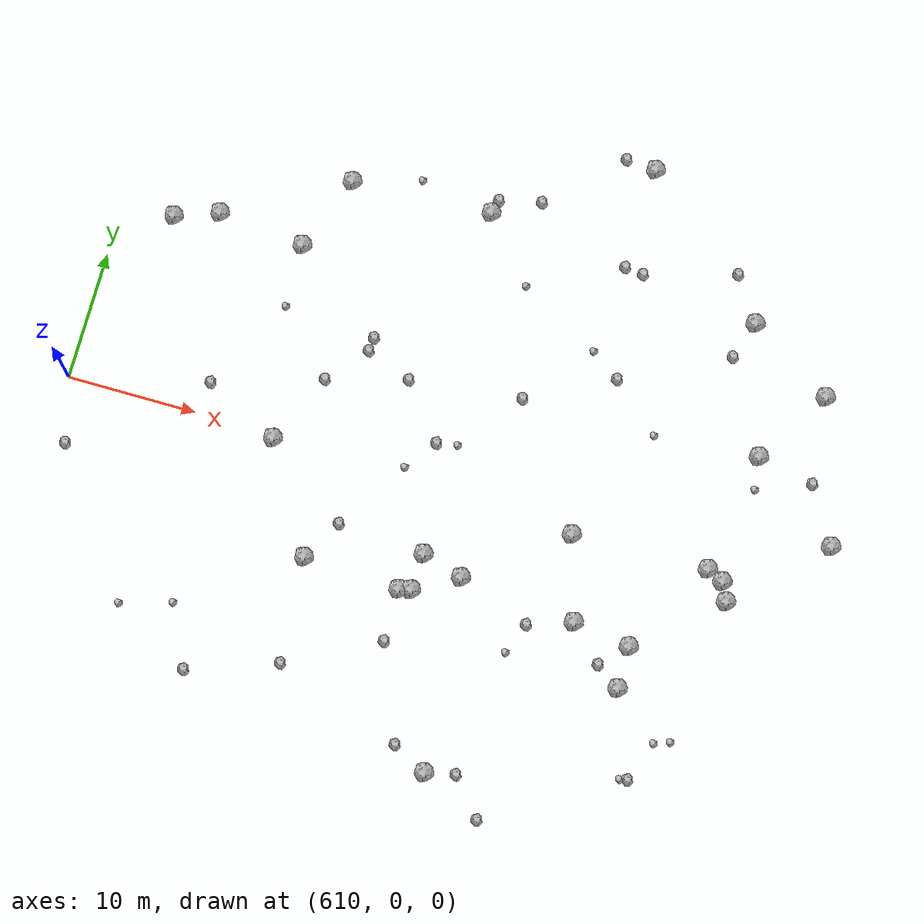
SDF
<sdf version="1.6">
 <world name="default">
  <include><uri>model://sun</uri></include>
  <model name="rock1_16_3">
   <include><uri>model://rock1</uri><pose>665.6225257198477 13.93714273295518 0.5 0 0 0</pose></include>
  </model>
  <model name="rock1_16_4">
   <include><uri>model://rock1</uri><pose>639.4457408850024 -8.692595622531517 0.5 0 0 0</pose></include>
  </model>
  <model name="rock1_16_5">
   <include><uri>model://rock1</uri><pose>668.8540989846516 2.9368927238578237 0.5 0 0 0</pose></include>
  </model>
  <model name="rock1_16_6">
   <include><uri>model://rock1</uri><pose>662.3416538029916 -3.219359252525507 0.5 0 0 0</pose></include>
  </model>
  <model name="rock1_16_7">
   <include><uri>model://rock1</uri><pose>644.1001378718471 -21.59436735857426 0.5 0 0 0</pose></include>
  </model>
  <model name="rock1_16_8">
   <include><uri>model://rock1</uri><pose>637.4254192402763 21.018926272716293 0.5 0 0 0</pose></include>
  </model>
  <model name="rock1_16_9">
   <include><uri>model://rock1</uri><pose>617.4220895436378 15.413954665630563 0.5 0 0 0</pose></include>
  </model>
  <model name="rock1_16_10">
   <include><uri>model://rock1</uri><pose>626.2604143957615 -0.3749311792992387 0.5 0 0 0</pose></include>
  </model>
  <model name="rock1_16_11">
   <include><uri>model://rock1</uri><pose>656.2314718525028 -11.689606638423594 0.5 0 0 0</pose></include>
  </model>
  <model name="rock1_16_12">
   <include><uri>model://rock1</uri><pose>661.9219345813685 8.120661465088887 0.5 0 0 0</pose></include>
  </model>
  <model name="rock1_16_13">
   <include><uri>model://rock1</uri><pose>614.1022810576691 14.24039832576431 0.5 0 0 0</pose></include>
  </model>
  <model name="rock1_16_14">
   <include><uri>model://rock1</uri><pose>631.0551963812377 -8.487451322778526 0.5 0 0 0</pose></include>
  </model>
  <model name="rock1_16_15">
   <include><uri>model://rock1</uri><pose>659.0713869691016 18.044614010965503 0.5 0 0 0</pose></include>
  </model>
  <model name="rock1_16_16">
   <include><uri>model://rock1</uri><pose>648.6599584556368 27.70835717753016 0.5 0 0 0</pose></include>
  </model>
  <model name="rock1_16_17">
   <include><uri>model://rock1</uri><pose>660.3993154470285 -1.2008359254691854 0.5 0 0 0</pose></include>
  </model>
  <model name="rock1_16_18">
   <include><uri>model://rock1</uri><pose>638.527197716588 -8.918286344459293 0.5 0 0 0</pose></include>
  </model>
  <model name="rock1_16_19">
   <include><uri>model://rock1</uri><pose>642.7794043646174 -6.7891646781425194 0.5 0 0 0</pose></include>
  </model>
  <model name="rock1_16_20">
   <include><uri>model://rock1</uri><pose>661.6867021456787 -1.8224562924109868 0.5 0 0 0</pose></include>
  </model>
  <model name="rock1_16_21">
   <include><uri>model://rock1</uri><pose>649.9096189660722 -1.4070959765963558 0.5 0 0 0</pose></include>
  </model>
  <model name="rock1_16_22">
   <include><uri>model://rock1</uri><pose>651.7918726586502 -7.776792826010613 0.5 0 0 0</pose></include>
  </model>
  <model name="rock1_16_23">
   <include><uri>model://rock1</uri><pose>624.1996205482674 14.669400816933006 0.5 0 0 0</pose></include>
  </model>
  <model name="rock1_16_24">
   <include><uri>model://rock1</uri><pose>626.496864503621 20.55232689006794 0.5 0 0 0</pose></include>
  </model>
  <model name="rock1_16_25">
   <include><uri>model://rock1</uri><pose>656.2203965971823 -8.442689928090893 0.5 0 0 0</pose></include>
  </model>
  <model name="rock1_16_26">
   <include><uri>model://rock1</uri><pose>639.609345962107 -5.836890688645941 0.5 0 0 0</pose></include>
  </model>
  <model name="rock2_16_0">
   <include><uri>model://rock2</uri><pose>646.3696966440873 -21.104083898569613 0.3 0 0 0</pose></include>
  </model>
  <model name="rock2_16_1">
   <include><uri>model://rock2</uri><pose>654.341988737308 -10.351069862459632 0.3 0 0 0</pose></include>
  </model>
  <model name="rock2_16_2">
   <include><uri>model://rock2</uri><pose>631.3389104666144 8.09188098624466 0.3 0 0 0</pose></include>
  </model>
  <model name="rock2_16_3">
   <include><uri>model://rock2</uri><pose>656.8240292782749 21.44822702572077 0.3 0 0 0</pose></include>
  </model>
  <model name="rock2_16_4">
   <include><uri>model://rock2</uri><pose>632.8372074149689 -5.319916530114092 0.3 0 0 0</pose></include>
  </model>
  <model name="rock2_16_5">
   <include><uri>model://rock2</uri><pose>648.3986827221429 -8.904820221556253 0.3 0 0 0</pose></include>
  </model>
  <model name="rock2_16_6">
   <include><uri>model://rock2</uri><pose>648.750669026043 -23.902925946733617 0.3 0 0 0</pose></include>
  </model>
  <model name="rock2_16_7">
   <include><uri>model://rock2</uri><pose>638.5273559586858 -12.964135159359987 0.3 0 0 0</pose></include>
  </model>
  <model name="rock2_16_8">
   <include><uri>model://rock2</uri><pose>641.4224702836938 -20.174543891576548 0.3 0 0 0</pose></include>
  </model>
  <model name="rock2_16_9">
   <include><uri>model://rock2</uri><pose>634.8758256955293 6.7372182339034765 0.3 0 0 0</pose></include>
  </model>
  <model name="rock2_16_10">
   <include><uri>model://rock2</uri><pose>611.2240773748764 -4.9419969554930105 0.3 0 0 0</pose></include>
  </model>
  <model name="rock2_16_11">
   <include><uri>model://rock2</uri><pose>658.0661849559333 15.086113640112352 0.3 0 0 0</pose></include>
  </model>
  <model name="rock2_16_12">
   <include><uri>model://rock2</uri><pose>648.3704528317362 19.662223595678896 0.3 0 0 0</pose></include>
  </model>
  <model name="rock2_16_13">
   <include><uri>model://rock2</uri><pose>631.538506221865 -16.633562408860385 0.3 0 0 0</pose></include>
  </model>
  <model name="rock2_16_14">
   <include><uri>model://rock2</uri><pose>631.4499049302513 9.16300220897368 0.3 0 0 0</pose></include>
  </model>
  <model name="rock2_16_15">
   <include><uri>model://rock2</uri><pose>650.0600453510232 11.034018233959813 0.3 0 0 0</pose></include>
  </model>
  <model name="rock2_16_16">
   <include><uri>model://rock2</uri><pose>658.6713306983455 -18.053464623295287 0.3 0 0 0</pose></include>
  </model>
  <model name="rock2_16_17">
   <include><uri>model://rock2</uri><pose>649.8317975342236 19.491148826832443 0.3 0 0 0</pose></include>
  </model>
  <model name="rock2_16_18">
   <include><uri>model://rock2</uri><pose>640.908750222957 22.892045928380504 0.3 0 0 0</pose></include>
  </model>
  <model name="rock2_16_19">
   <include><uri>model://rock2</uri><pose>666.3137819767973 7.202422685125768 0.3 0 0 0</pose></include>
  </model>
  <model name="rock2_16_20">
   <include><uri>model://rock2</uri><pose>637.6915522865654 22.16343967775677 0.3 0 0 0</pose></include>
  </model>
  <model name="rock2_16_21">
   <include><uri>model://rock2</uri><pose>624.727965722693 -19.02477485463401 0.3 0 0 0</pose></include>
  </model>
  <model name="rock2_16_22">
   <include><uri>model://rock2</uri><pose>646.2659622744875 27.94615326267433 0.3 0 0 0</pose></include>
  </model>
  <model name="rock2_16_23">
   <include><uri>model://rock2</uri><pose>628.7355762419534 5.066640701556473 0.3 0 0 0</pose></include>
  </model>
  <model name="rock2_16_24">
   <include><uri>model://rock2</uri><pose>643.5562488808242 7.662921387950163 0.3 0 0 0</pose></include>
  </model>
  <model name="rock2_16_25">
   <include><uri>model://rock2</uri><pose>620.462613141746 2.5040546513850117 0.3 0 0 0</pose></include>
  </model>
  <model name="rock2_16_26">
   <include><uri>model://rock2</uri><pose>638.2089485335833 2.591183553671236 0.3 0 0 0</pose></include>
  </model>
  <model name="rock3_16_0">
   <include><uri>model://rock3</uri><pose>662.2360678701452 5.596802622770568 0.2 0 0 0</pose></include>
  </model>
  <model name="rock3_16_1">
   <include><uri>model://rock3</uri><pose>622.5273309192477 -14.444459207136191 0.2 0 0 0</pose></include>
  </model>
  <model name="rock3_16_2">
   <include><uri>model://rock3</uri><pose>658.0995969628357 -18.183227363045766 0.2 0 0 0</pose></include>
  </model>
  <model name="rock3_16_3">
   <include><uri>model://rock3</uri><pose>624.2666778869683 9.717723544341503 0.2 0 0 0</pose></include>
  </model>
  <model name="rock3_16_4">
   <include><uri>model://rock3</uri><pose>661.0072748937 -14.527739449432332 0.2 0 0 0</pose></include>
  </model>
  <model name="rock3_16_5">
   <include><uri>model://rock3</uri><pose>639.7848839898859 2.846483934562073 0.2 0 0 0</pose></include>
  </model>
  <model name="rock3_16_6">
   <include><uri>model://rock3</uri><pose>641.4784226447891 16.16759409869732 0.2 0 0 0</pose></include>
  </model>
  <model name="rock3_16_7">
   <include><uri>model://rock3</uri><pose>618.6194997568144 -15.574823201546373 0.2 0 0 0</pose></include>
  </model>
  <model name="rock3_16_8">
   <include><uri>model://rock3</uri><pose>636.39810926699 0.14404050736244045 0.2 0 0 0</pose></include>
  </model>
  <model name="rock3_16_9">
   <include><uri>model://rock3</uri><pose>653.8613135894241 7.562636406394205 0.2 0 0 0</pose></include>
  </model>
  <model name="rock3_16_10">
   <include><uri>model://rock3</uri><pose>631.6327318514728 22.099772982257967 0.2 0 0 0</pose></include>
  </model>
  <model name="rock3_16_11">
   <include><uri>model://rock3</uri><pose>647.7674437723208 12.650955130979334 0.2 0 0 0</pose></include>
  </model>
  <model name="rock3_16_12">
   <include><uri>model://rock3</uri><pose>647.4548925453222 -11.366322365351547 0.2 0 0 0</pose></include>
  </model>
  <model name="rock3_16_13">
   <include><uri>model://rock3</uri><pose>659.8284568683417 -14.95223152697353 0.2 0 0 0</pose></include>
  </model>
 </world>
</sdf>
